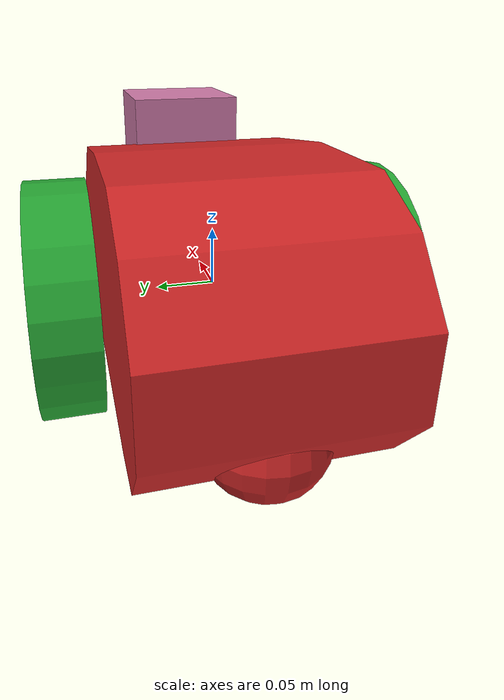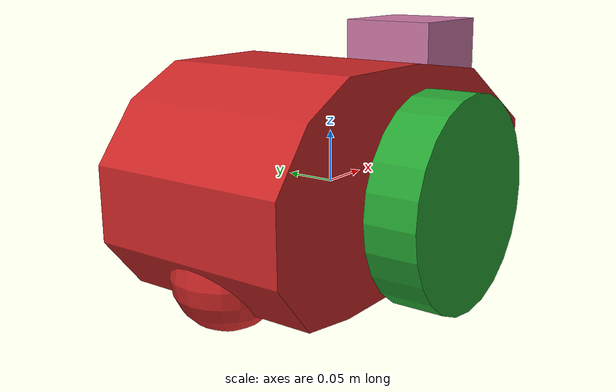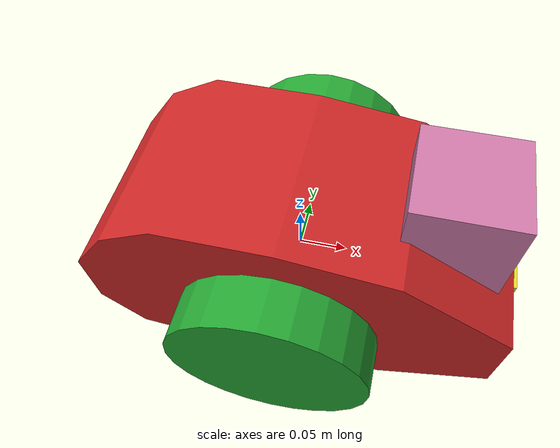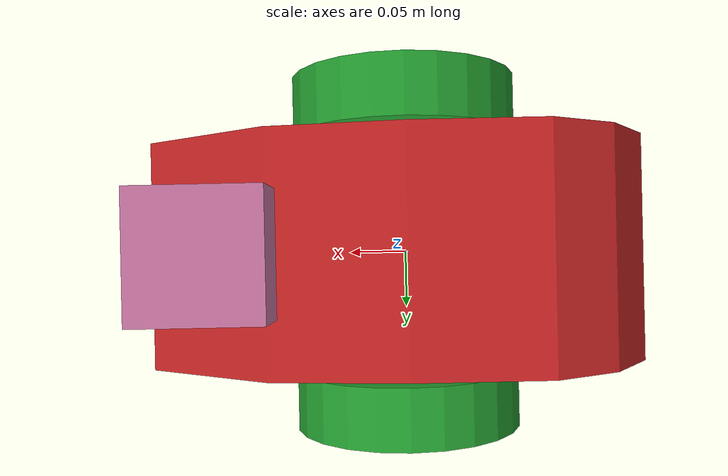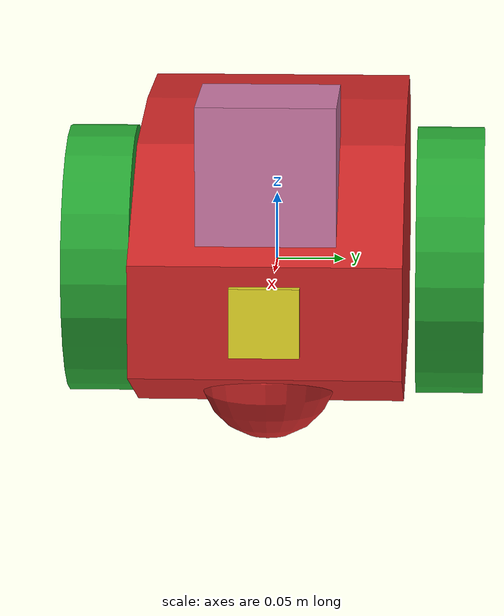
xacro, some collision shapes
<?xml version="1.0"?>

<robot name="my_robot" xmlns:xacro="http://www.ros.org/wiki/xacro">

    <xacro:include filename="$(find my_robot)/urdf/my_robot.gazebo" />

    <link name="robot_footprint"></link>

    <joint name="robot_footprint_joint" type="fixed">
        <origin xyz="0 0 0" rpy="0 0 0" />
        <parent link="robot_footprint"/>
        <child link="chassis" />
    </joint>

    <joint type="continuous" name="left_wheel_hinge">
        <origin xyz="0 0.13 0" rpy="0 0 0"/>
        <parent link="chassis"/>
        <child link="left_wheel"/>
        <axis xyz="0 1 0" rpy="0 0 0"/>
        <limit effort="10000" velocity="1000"/>
        <dynamics damping="1.0" friction="1.0"/>
    </joint>

    <joint type="continuous" name="right_wheel_hinge">
        <origin xyz="0 -0.13 0" rpy="0 0 0"/>
        <parent link="chassis"/>
        <child link="right_wheel"/>
        <axis xyz="0 1 0" rpy="0 0 0"/>
        <limit effort="10000" velocity="1000"/>
        <dynamics damping="1.0" friction="1.0"/>
    </joint>

    <!-- RGB camera -->
    <joint type="fixed" name="camera_joint">
        <origin xyz="0.2 0 0" rpy="0 0 0"/>
        <parent link="chassis"/>
        <child link="camera"/>
        <axis xyz="0 1 0" rpy="0 0 0"/>
    </joint>

    <!-- RGBD camera -->
    <joint type="fixed" name="camera_optical_joint">
        <origin xyz="0 0 0" rpy="-1.5707 0 -1.5707"/>
        <parent link="camera"/>
        <child link="camera_link_optical"/>
    </joint>

    <joint type="fixed" name="hokuyo_joint">
        <origin xyz="0.15 0 0.1" rpy="0 0 0"/>
        <parent link="chassis"/>
        <child link="hokuyo"/>
        <axis xyz="0 1 0" rpy="0 0 0"/>
    </joint>

    <link name="chassis">
        <pose>0 0 0.1 0 0 0</pose>

        <inertial>
            <mass value="15.0"/>
            <origin xyz="0.0 0 0" rpy=" 0 0 0"/>
            <inertia
                ixx="0.1" ixy="0" ixz="0"
                iyy="0.1" iyz="0"
                izz="0.1"
            />
        </inertial>

        <collision name="collision">
            <origin xyz="0 0 0" rpy=" 0 0 0"/>
            <geometry>
                <box size="0.4 0.2 0.1"/>
            </geometry>
        </collision>

        <visual name="chassis_visual">
            <origin xyz="0 0 0" rpy=" 0 0 0"/>
            <geometry>
		<mesh filename="package://my_robot/meshes/chassis.dae"/>
            </geometry>
        </visual>

        <collision name="back_caster_collision">
            <origin xyz="-0.15 0 -0.05" rpy=" 0 0 0"/>
            <geometry>
                <sphere radius="0.0499"/>
            </geometry>
        </collision>

        <visual name="back_caster_visual">
            <origin xyz="-0.15 0 -0.05" rpy=" 0 0 0"/>
            <geometry>
                <sphere radius="0.05"/>
            </geometry>
        </visual>

        <collision name="front_caster_collision">
            <origin xyz="0.15 0 -0.05" rpy=" 0 0 0"/>
            <geometry>
                <sphere radius="0.0499"/>
            </geometry>
        </collision>

        <visual name="front_caster_visual">
            <origin xyz="0.15 0 -0.05" rpy=" 0 0 0"/>
            <geometry>
                <sphere radius="0.05"/>
            </geometry>
        </visual>

    </link>

    <link name="left_wheel">
        <pose>0 0 0 0 0 0</pose>

        <inertial>
            <mass value="5.0"/>
            <origin xyz="0 0 0" rpy=" 0 0 0"/>
            <inertia
                ixx="0.1" ixy="0" ixz="0"
                iyy="0.1" iyz="0"
                izz="0.1"
            />
        </inertial>

        <collision name="left_wheel_collision">
            <origin xyz="0 0 0" rpy=" 0 1.5707 1.5707"/>
            <geometry>
                <cylinder radius="0.1" length="0.05"/>
            </geometry>
        </collision>

        <visual name="left_wheel_visual">
            <origin xyz="0 0 0" rpy=" 0 1.5707 1.5707"/>
            <geometry>
                <cylinder radius="0.1" length="0.05"/>
            </geometry>
        </visual>

    </link>

    <link name="right_wheel">
        <pose>0 0 0 0 0 0</pose>

        <inertial>
            <mass value="5.0"/>
            <origin xyz="0 0 0" rpy=" 0 0 0"/>
            <inertia
                ixx="0.1" ixy="0" ixz="0"
                iyy="0.1" iyz="0"
                izz="0.1"
            />
        </inertial>

        <collision name="right_wheel_collision">
            <origin xyz="0 0 0" rpy=" 0 1.5707 1.5707"/>
            <geometry>
                <cylinder radius="0.1" length="0.05"/>
            </geometry>
        </collision>

        <visual name="right_wheel_visual">
            <origin xyz="0 0 0" rpy=" 0 1.5707 1.5707"/>
            <geometry>
                <cylinder radius="0.1" length="0.05"/>
            </geometry>
        </visual>

    </link>

    <!-- RGB camera -->
    <link name="camera">
        <pose>0 0 0 0 0 0</pose>

        <inertial>
            <mass value="0.1"/>
            <origin xyz="0.05 0.05 0.05" rpy=" 0 0 0"/>
            <inertia
                ixx="1e-6" ixy="0" ixz="0"
                iyy="1e-6" iyz="0"
                izz="1e-6"
            />
        </inertial>

        <collision name="camera_collision">
            <origin xyz="0 0 0" rpy=" 0 0 0"/>
            <geometry>
                <box size="0.05 0.05 0.05"/>
            </geometry>
        </collision>

        <visual name="camera_visual">
            <origin xyz="0 0 0" rpy=" 0 0 0"/>
            <geometry>
                <box size="0.05 0.05 0.05"/>
            </geometry>
        </visual>
    </link>

    <!-- RGBD camera -->
    <link name="camera_link_optical">
    </link>

    <link name="hokuyo">
        <pose>0 0 0 0 0 0</pose>

        <inertial>
            <mass value="1e-5"/>
            <origin xyz="0.05 0.05 0.05" rpy=" 0 0 0"/>
            <inertia
                ixx="1e-6" ixy="0" ixz="0"
                iyy="1e-6" iyz="0"
                izz="1e-6"
            />
        </inertial>

        <collision name="hokuyo_collision">
            <origin xyz="0 0 0" rpy=" 0 0 0"/>
            <geometry>
                <box size="0.1 0.1 0.1"/>
            </geometry>
        </collision>

        <visual name="hokuyo_visual">
            <origin xyz="0 0 0" rpy=" 0 0 0"/>
            <geometry>
                <mesh filename="package://my_robot/meshes/hokuyo.dae"/>
            </geometry>
        </visual>
    </link>

    <gazebo reference="left_wheel">
        <material>Gazebo/Green</material>
    </gazebo>

    <gazebo reference="right_wheel">
        <material>Gazebo/Green</material>
    </gazebo>

    <gazebo reference="chassis">
        <material>Gazebo/Red</material>
    </gazebo>

    <gazebo reference="camera">
        <material>Gazebo/Yellow</material>
    </gazebo>

</robot>
